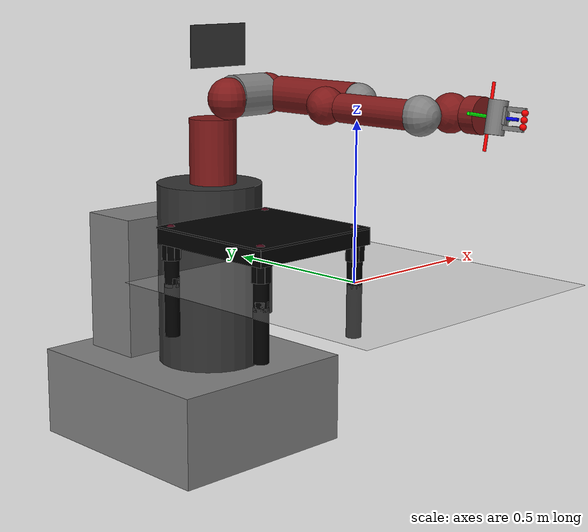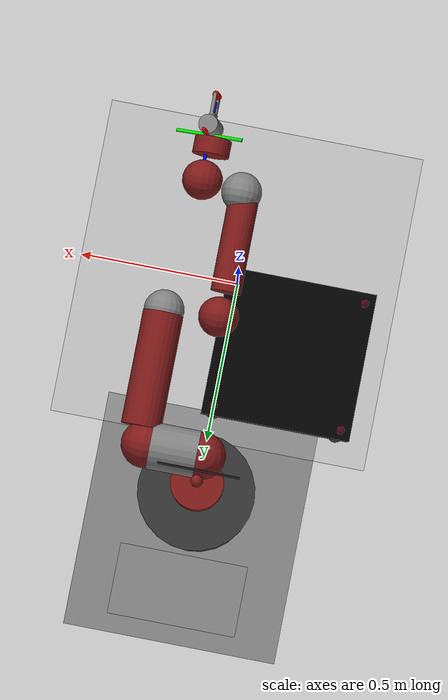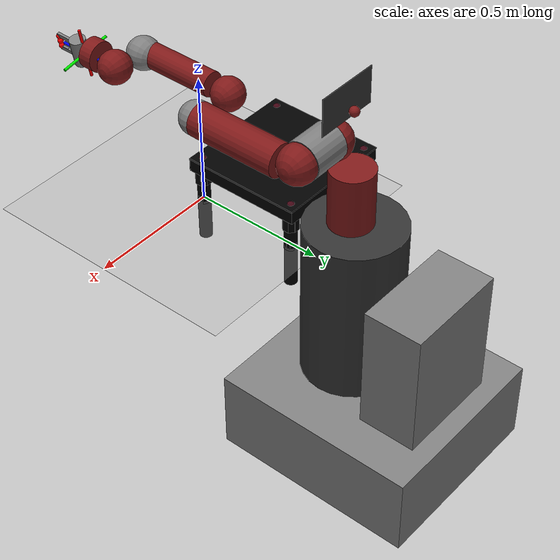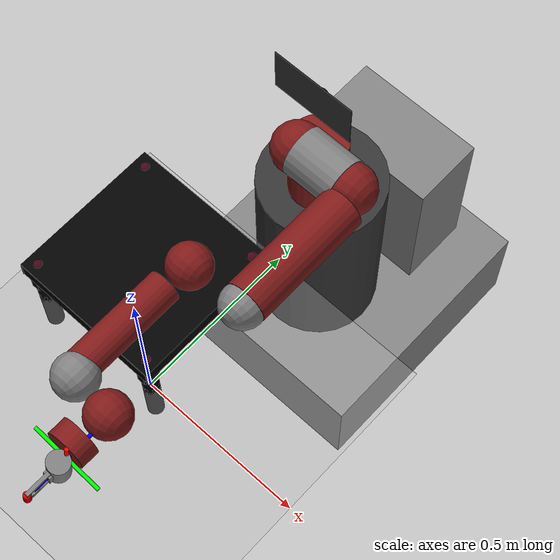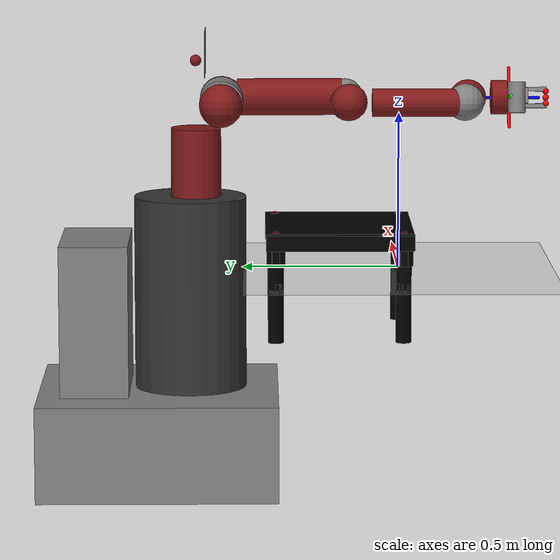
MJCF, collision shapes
<mujoco model="base">
  <compiler angle="radian" meshdir="meshes/" />
  <option cone="elliptic" impratio="20" />
  <size nconmax="5000" njmax="5000" />
  <visual>
      <map znear="0.001" />
  </visual>

  <asset>
  <texture builtin="flat" height="256" rgb1="1 1 1." rgb2=".2 .3 .4" type="skybox" width="256" />
        <texture builtin="checker" height="512" name="texplane" rgb1=".2 .3 .4" rgb2=".1 0.15 0.2" type="2d" width="512" />
        <material name="floorplane" reflectance="0.5" texrepeat="1 1" texture="texplane" texuniform="true" />
    <mesh file="C:\Users\harsh\OneDrive - Georgia Institute of Technology\Documents\Georgia Tech\Spring 2025\CS 7648 IRL\Project\cs7648\env\models\assets\robots\sawyer\meshes/pedestal.stl" name="pedestal" />
        <mesh file="C:\Users\harsh\OneDrive - Georgia Institute of Technology\Documents\Georgia Tech\Spring 2025\CS 7648 IRL\Project\cs7648\env\models\assets\robots\sawyer\meshes/base.stl" name="base" />
        <mesh file="C:\Users\harsh\OneDrive - Georgia Institute of Technology\Documents\Georgia Tech\Spring 2025\CS 7648 IRL\Project\cs7648\env\models\assets\robots\sawyer\meshes/l0.stl" name="l0" />
        <mesh file="C:\Users\harsh\OneDrive - Georgia Institute of Technology\Documents\Georgia Tech\Spring 2025\CS 7648 IRL\Project\cs7648\env\models\assets\robots\sawyer\meshes/head.stl" name="head" />
        <mesh file="C:\Users\harsh\OneDrive - Georgia Institute of Technology\Documents\Georgia Tech\Spring 2025\CS 7648 IRL\Project\cs7648\env\models\assets\robots\sawyer\meshes/l1.stl" name="l1" />
        <mesh file="C:\Users\harsh\OneDrive - Georgia Institute of Technology\Documents\Georgia Tech\Spring 2025\CS 7648 IRL\Project\cs7648\env\models\assets\robots\sawyer\meshes/l2.stl" name="l2" />
        <mesh file="C:\Users\harsh\OneDrive - Georgia Institute of Technology\Documents\Georgia Tech\Spring 2025\CS 7648 IRL\Project\cs7648\env\models\assets\robots\sawyer\meshes/l3.stl" name="l3" />
        <mesh file="C:\Users\harsh\OneDrive - Georgia Institute of Technology\Documents\Georgia Tech\Spring 2025\CS 7648 IRL\Project\cs7648\env\models\assets\robots\sawyer\meshes/l4.stl" name="l4" />
        <mesh file="C:\Users\harsh\OneDrive - Georgia Institute of Technology\Documents\Georgia Tech\Spring 2025\CS 7648 IRL\Project\cs7648\env\models\assets\robots\sawyer\meshes/l5.stl" name="l5" />
        <mesh file="C:\Users\harsh\OneDrive - Georgia Institute of Technology\Documents\Georgia Tech\Spring 2025\CS 7648 IRL\Project\cs7648\env\models\assets\robots\sawyer\meshes/l6.stl" name="l6" />
    <mesh file="C:\Users\harsh\OneDrive - Georgia Institute of Technology\Documents\Georgia Tech\Spring 2025\CS 7648 IRL\Project\cs7648\env\models\assets\grippers\meshes/two_finger_gripper/electric_gripper_base.STL" name="electric_gripper_base" />
        <mesh file="C:\Users\harsh\OneDrive - Georgia Institute of Technology\Documents\Georgia Tech\Spring 2025\CS 7648 IRL\Project\cs7648\env\models\assets\grippers\meshes/two_finger_gripper/standard_narrow.STL" name="standard_narrow" />
        <mesh file="C:\Users\harsh\OneDrive - Georgia Institute of Technology\Documents\Georgia Tech\Spring 2025\CS 7648 IRL\Project\cs7648\env\models\assets\grippers\meshes/two_finger_gripper/half_round_tip.STL" name="half_round_tip" />
    <mesh file="C:\Users\harsh\OneDrive - Georgia Institute of Technology\Documents\Georgia Tech\Spring 2025\CS 7648 IRL\Project\cs7648\env\models\assets\objects\toy_table/0.stl" name="part0" scale="0.042 0.042 0.042" />
    <mesh file="C:\Users\harsh\OneDrive - Georgia Institute of Technology\Documents\Georgia Tech\Spring 2025\CS 7648 IRL\Project\cs7648\env\models\assets\objects\toy_table/4.stl" name="part4" scale="0.042 0.042 0.042" />
    <mesh file="C:\Users\harsh\OneDrive - Georgia Institute of Technology\Documents\Georgia Tech\Spring 2025\CS 7648 IRL\Project\cs7648\env\models\assets\objects\toy_table/3.stl" name="part3" scale="0.042 0.042 0.042" />
    <mesh file="C:\Users\harsh\OneDrive - Georgia Institute of Technology\Documents\Georgia Tech\Spring 2025\CS 7648 IRL\Project\cs7648\env\models\assets\objects\toy_table/2.stl" name="part2" scale="0.042 0.042 0.042" />
    <mesh file="C:\Users\harsh\OneDrive - Georgia Institute of Technology\Documents\Georgia Tech\Spring 2025\CS 7648 IRL\Project\cs7648\env\models\assets\objects\toy_table/1.stl" name="part1" scale="0.042 0.042 0.042" />
  </asset>

  <actuator>
  <velocity ctrllimited="true" ctrlrange="-1.74 1.74" joint="right_j0" kv="8.0" name="vel_right_j0" />
        <velocity ctrllimited="true" ctrlrange="-1.328 1.328" joint="right_j1" kv="7.0" name="vel_right_j1" />
        <velocity ctrllimited="true" ctrlrange="-1.957 1.957" joint="right_j2" kv="6.0" name="vel_right_j2" />
        <velocity ctrllimited="true" ctrlrange="-1.957 1.957" joint="right_j3" kv="4.0" name="vel_right_j3" />
        <velocity ctrllimited="true" ctrlrange="-3.485 3.485" joint="right_j4" kv="2.0" name="vel_right_j4" />
        <velocity ctrllimited="true" ctrlrange="-3.485 3.485" joint="right_j5" kv="0.5" name="vel_right_j5" />
        <velocity ctrllimited="true" ctrlrange="-4.545 4.545" joint="right_j6" kv="0.1" name="vel_right_j6" />
    <position ctrllimited="true" ctrlrange="-0.020833 0.0115" forcelimited="true" forcerange="-20 20" joint="r_gripper_r_finger_joint" kp="10000" name="gripper_r_gripper_r_finger_joint" />
        <position ctrllimited="true" ctrlrange="-0.0115 0.020833" forcelimited="true" forcerange="-20 20" joint="r_gripper_l_finger_joint" kp="10000" name="gripper_r_gripper_l_finger_joint" />
    </actuator>

  <worldbody>
  <geom condim="3" friction="2.0 0.005 0.0001" name="FLOOR" pos="0 0 0" rgba="0.7 0.7 0.7 1" size="0.5 0.5 0.0625" type="plane" />

        <light castshadow="true" diffuse=".8 .8 .8" dir=".5 -.3 -.8" directional="true" pos="0 0 2.0" specular="0.3 0.3 0.3" />

        <camera fovy="60" mode="fixed" name="frontview" pos="0 -1.2 0.9" quat="0.86 0.51 0. 0." />
        <camera mode="fixed" name="sideview" pos="-2.5 0. 0.5" quat="0.5468 0.4482 -0.4482 -0.5468" />
    <body name="base" pos="0.0 0.65 0.21300000000000008" quat="1 0 0 -1">
            <inertial diaginertia="0 0 0" mass="0" pos="0 0 0" />
            <body name="controller_box" pos="0 0 0">
                <inertial diaginertia="1.71363 1.27988 0.809981" mass="46.64" pos="-0.325 0 -0.38" />
                <geom name="controller_box_visual" pos="-0.325 0 -0.38" size="0.11 0.2 0.265" type="box" />
            </body>
            <body name="pedestal_feet" pos="0 0 0">
                <inertial diaginertia="8.16095 9.59375 15.0785" mass="167.09" pos="-0.1225 0 -0.758" />
                <geom name="pedestal_feet_visual" pos="-0.1225 0 -0.758" size="0.385 0.35 0.155" type="box" />
            </body>
            <body name="torso" pos="0 0 0">
                <inertial diaginertia="1e-08 1e-08 1e-08" mass="0.0001" pos="0 0 0" />
                <geom conaffinity="0" contype="0" group="1" name="torso_visual" rgba="0.2 0.2 0.2 1" size="0.05 0.05 0.05" type="box" />
            </body>
            <body name="pedestal" pos="0 0 0">
                <inertial diaginertia="6.0869 5.81635 4.20915" mass="60.864" pos="0 0 0" quat="0.659267 -0.259505 -0.260945 0.655692" />
                <geom conaffinity="0" contype="0" group="1" mesh="pedestal" name="pedestal_visual" pos="0.26 0.345 -0.91488" quat="0.5 0.5 -0.5 -0.5" rgba="0.2 0.2 0.2 1" type="mesh" />
                <geom name="pedestal_collision" pos="-0.02 0 -0.29" rgba="0.2 0.2 0.2 1" size="0.18 0.31" type="cylinder" />
            </body>
            <body name="right_arm_base_link" pos="0 0 0">
                <inertial diaginertia="0.00740351 0.00681776 0.00672942" mass="2.0687" pos="-0.0006241 -2.8025e-05 0.065404" quat="-0.209285 0.674441 0.227335 0.670558" />
                <geom conaffinity="0" contype="0" group="1" mesh="base" name="right_arm_base_link_visual" rgba="0.5 0.1 0.1 1" type="mesh" />
                <geom name="right_arm_base_link_collision" pos="0 0 0.12" rgba="0.5 0.1 0.1 1" size="0.08 0.12" type="cylinder" />
                <body name="right_l0" pos="0 0 0.08">
                    <inertial diaginertia="0.0651588 0.0510944 0.0186218" mass="5.3213" pos="0.024366 0.010969 0.14363" quat="0.894823 0.00899958 -0.170275 0.412573" />
                    <joint axis="0 0 1" limited="true" name="right_j0" pos="0 0 0" range="-3.0503 3.0503" />
                    <geom conaffinity="0" contype="0" group="1" mesh="l0" name="right_l0_visual" rgba="0.5 0.1 0.1 1" type="mesh" />
                    <geom name="right_l0_collision" pos="0.08 0 0.23" rgba="0.5 0.1 0.1 1" size="0.07" />
                    <body name="head" pos="0 0 0.2965">
                        <inertial diaginertia="0.0118334 0.00827089 0.00496574" mass="1.5795" pos="0.0053207 -2.6549e-05 0.1021" quat="0.999993 7.08405e-05 -0.00359857 -0.000626247" />

                            <geom conaffinity="0" contype="0" group="1" mesh="head" name="head_visual" rgba="0.5 0.1 0.1 1" type="mesh" />
                            <geom name="head_collision" pos="0 0 0.08" rgba="0.5 0.1 0.1 1" size="0.018" />
                            <body name="screen" pos="0.03 0 0.105" quat="0.5 0.5 0.5 0.5">
                                <inertial diaginertia="1e-08 1e-08 1e-08" mass="0.0001" pos="0 0 0" />
                                <geom conaffinity="0" contype="0" group="1" name="screen_visual" rgba="0.2 0.2 0.2 1" size="0.12 0.07 0.001" type="box" />
                                <geom name="screen_collision" rgba="0.2 0.2 0.2 1" size="0.001" />
                            </body>
                            <body name="head_camera" pos="0.0228027 0 0.216572" quat="0.342813 -0.618449 0.618449 -0.342813">
                                <inertial diaginertia="0 0 0" mass="0" pos="0.0228027 0 0.216572" quat="0.342813 -0.618449 0.618449 -0.342813" />
                            </body>
                        </body>
                        <body name="right_torso_itb" pos="-0.055 0 0.22" quat="0.707107 0 -0.707107 0">
                            <inertial diaginertia="1e-08 1e-08 1e-08" mass="0.0001" pos="0 0 0" />
                        </body>
                        <body name="right_l1" pos="0.081 0.05 0.237" quat="0.5 -0.5 0.5 0.5">
                            <inertial diaginertia="0.0224339 0.0221624 0.0097097" mass="4.505" pos="-0.0030849 -0.026811 0.092521" quat="0.424888 0.891987 0.132364 -0.0794296" />
                            <joint axis="0 0 1" limited="true" name="right_j1" pos="0 0 0" range="-3.8095 2.2736" />
                            <geom conaffinity="0" contype="0" group="1" mesh="l1" name="right_l1_visual" rgba="0.5 0.1 0.1 1" type="mesh" />
                            <geom name="right_l1_collision" pos="0 0 0.1225" rgba="0.5 0.1 0.1 1" size="0.07" />
                            <body name="right_l2" pos="0 -0.14 0.1425" quat="0.707107 0.707107 0 0">
                                <inertial diaginertia="0.0257928 0.025506 0.00292515" mass="1.745" pos="-0.00016044 -0.014967 0.13582" quat="0.707831 -0.0524761 0.0516007 0.702537" />
                                <joint axis="0 0 1" limited="true" name="right_j2" pos="0 0 0" range="-3.0426 3.0426" />
                                <geom conaffinity="0" contype="0" group="1" mesh="l2" name="right_l2_visual" rgba="0.5 0.1 0.1 1" type="mesh" />
                                <geom name="right_l2_collision" pos="0 0 0.08" rgba="0.5 0.1 0.1 1" size="0.06 0.17" type="cylinder" />
                                <body name="right_l3" pos="0 -0.042 0.26" quat="0.707107 -0.707107 0 0">
                                    <inertial diaginertia="0.0102404 0.0096997 0.00369622" mass="2.5097" pos="-0.0048135 -0.0281 -0.084154" quat="0.902999 0.385391 -0.0880901 0.168247" />
                                    <joint axis="0 0 1" limited="true" name="right_j3" pos="0 0 0" range="-3.0439 3.0439" />
                                    <geom conaffinity="0" contype="0" group="1" mesh="l3" name="right_l3_visual" rgba="0.5 0.1 0.1 1" type="mesh" />
                                    <geom name="right_l3_collision" pos="0 -0.01 -0.12" rgba="0.5 0.1 0.1 1" size="0.06" />
                                    <body name="right_l4" pos="0 -0.125 -0.1265" quat="0.707107 0.707107 0 0">
                                        <inertial diaginertia="0.0136549 0.0135493 0.00127353" mass="1.1136" pos="-0.0018844 0.0069001 0.1341" quat="0.803612 0.031257 -0.0298334 0.593582" />
                                        <joint axis="0 0 1" limited="true" name="right_j4" pos="0 0 0" range="-2.9761 2.9761" />
                                        <geom conaffinity="0" contype="0" group="1" mesh="l4" name="right_l4_visual" rgba="0.5 0.1 0.1 1" type="mesh" />
                                        <geom name="right_l4_collision" pos="0 0 0.11" rgba="0.5 0.1 0.1 1" size="0.045 0.15" type="cylinder" />
                                        <body name="right_arm_itb" pos="-0.055 0 0.075" quat="0.707107 0 -0.707107 0">
                                            <inertial diaginertia="1e-08 1e-08 1e-08" mass="0.0001" pos="0 0 0" />
                                        </body>
                                        <body name="right_l5" pos="0 0.031 0.275" quat="0.707107 -0.707107 0 0">
                                            <inertial diaginertia="0.00474131 0.00422857 0.00190672" mass="1.5625" pos="0.0061133 -0.023697 0.076416" quat="0.404076 0.9135 0.0473125 0.00158335" />
                                            <joint axis="0 0 1" damping="0.2" limited="true" name="right_j5" pos="0 0 0" range="-2.9761 2.9761" />
                                            <geom conaffinity="0" contype="0" group="1" mesh="l5" name="right_l5_visual" rgba="0.5 0.1 0.1 1" type="mesh" />
                                            <geom name="right_l5_collision" pos="0 0 0.1" rgba="0.5 0.1 0.1 1" size="0.06" />
                                            <body name="right_hand_camera" pos="0.039552 -0.033 0.0695" quat="0.707107 0 0.707107 0">
                                                <inertial diaginertia="0 0 0" mass="0" pos="0.039552 -0.033 0.0695" quat="0.707107 0 0.707107 0" />
                                            </body>
                                            <body name="right_wrist" pos="0 0 0.10541" quat="0.707107 0.707107 0 0">
                                                <inertial diaginertia="0 0 0" mass="0" pos="0 0 0.10541" quat="0.707107 0.707107 0 0" />
                                            </body>
                                            <body name="right_l6" pos="0 -0.11 0.1053" quat="0.0616248 0.06163 -0.704416 0.704416">
                                                <camera euler="-2.7 0 0" name="wrist_cam" pos="0 0.1 0" />
                                                <inertial diaginertia="0.000360258 0.000311068 0.000214974" mass="0.3292" pos="-8.0726e-06 0.0085838 -0.0049566" quat="0.479044 0.515636 -0.513069 0.491322" />
                                                <joint axis="0 0 1" damping="0.1" limited="true" name="right_j6" pos="0 0 0" range="-4.7124 4.7124" />
                                                <geom conaffinity="0" contype="0" group="1" mesh="l6" name="right_l6_visual" rgba="0.5 0.1 0.1 1" type="mesh" />
                                                <geom name="right_l6_collision" pos="0 0.015 -0.01" rgba="0.5 0.1 0.1 1" size="0.055 0.025" type="cylinder" />
                                                <body name="right_hand" pos="0 0 0.0245" quat="0.707105 0 0 0.707108">

                                                    <site group="1" name="ee" pos="0 0 0" rgba="0 0 1 1" size="0.01 0.01 0.01" type="sphere" />
                                                    <site group="1" name="ee_x" pos="0 0 0" quat="0.707105 0.707108 0 0 " rgba="1 0 0 1" size="0.005 .1" type="cylinder" />
                                                    <site group="1" name="ee_z" pos="0 0 0" quat="0.707105 0 0 0.707108" rgba="0 0 1 1" size="0.005 .1" type="cylinder" />
                                                    <site group="1" name="ee_y" pos="0 0 0" quat="0.707105 0 0.707108 0 " rgba="0 1 0 1" size="0.005 .1" type="cylinder" />

                                                <geom size="1e-08 5e-09" type="cylinder" />
        <body name="right_gripper_base" pos="0 0 0.025">
            <site group="1" name="ft_frame" pos="0 0 0" rgba="1 0 0 1" size="0.01 0.01 0.01" type="sphere" />
            <inertial diaginertia="3e-08 2e-08 2e-08" mass="0.3" pos="0 0 0" quat="-0.5 0.5 0.5 0.5" />
            <geom conaffinity="0" contype="0" group="1" mesh="electric_gripper_base" name="right_gripper_base_visual" quat="0 0 0.707107 0.707107" type="mesh" />
            <geom name="right_gripper_base_collision" quat="0 0 0.707107 0.707107" size="0.029 0.05" type="cylinder" />
            <body name="right_gripper" pos="0 0 0.095">
                <inertial diaginertia="0 0 0" mass="0.0001" pos="0 0 0" />

                <site group="1" name="grip_site" pos="0 0 -0.03" rgba="0 0 0 0" size="0.01 0.01 0.01" type="sphere" />

                <site group="1" name="griptip_site" pos="0 0 0" rgba="1 0 0 1" size="0.01 0.01 0.01" type="sphere" />
                <site group="1" name="lgriptip_site" pos="0 0.02 0" rgba="1 0 0 1" size="0.01 0.01 0.01" type="sphere" />
                <site group="1" name="rgriptip_site" pos="0 -0.02 0" rgba="1 0 0 1" size="0.01 0.01 0.01" type="sphere" />

                <site group="1" name="grip_site_cylinder" pos="0 0 0" rgba="0 0 0 0" size="0.005 10" type="cylinder" />

                <camera fovy="75" mode="fixed" name="eye_in_hand" pos="0 0 0" quat="0 -1 1 0" />
            </body>

            <body name="r_gripper_l_finger" pos="0 0.01 0.02">
                <inertial diaginertia="0.01 0.01 0.01" mass="0.02" pos="0 0 0" quat="0 0 0 -1" />
                <joint axis="0 1 0" damping="100" limited="true" name="r_gripper_l_finger_joint" pos="0 0 0" range="-0.0115 0.020833" type="slide" />
                <geom conaffinity="0" contype="0" group="1" mesh="standard_narrow" name="r_gripper_l_finger" quat="0 0 0 -1" type="mesh" />
                <geom conaffinity="1" contype="0" friction="0 0 0" name="l_finger_g0" pos="0 0.01725 0.04" quat="0 0 0 -1" size="0.005 0.00675 0.0375" type="box" />
                <geom conaffinity="1" contype="0" friction="0 0 0" name="l_finger_g1" pos="-0.005 -0.003 0.0083" quat="0 0 0 -1" size="0.005 0.025 0.0085" type="box" />

                <body name="r_gripper_l_finger_tip" pos="0 0.01725 0.075">
                    <inertial diaginertia="0.01 0.01 0.01" mass="0.01" pos="0 0 0" quat="0 0 0 1" />
                    <geom conaffinity="0" contype="0" group="1" mesh="half_round_tip" name="r_gripper_l_finger_tip_visual" quat="0 0 0 1" type="mesh" />

                <geom conaffinity="1" contype="0" friction="2 10 0.5" name="l_fingertip_g0" pos="0 -0.0045 -0.015" quat="0 0 0 1" size="0.004 0.004 0.0185" type="box" />

                </body>
            </body>
            <body name="r_gripper_r_finger" pos="0 -0.01 0.02">
                <inertial diaginertia="0.01 0.01 0.01" mass="0.02" pos="0 0 0" />
                <joint axis="0 1 0" damping="100" limited="true" name="r_gripper_r_finger_joint" pos="0 0 0" range="-0.020833 0.0115" type="slide" />
                <geom conaffinity="0" contype="0" group="1" mesh="standard_narrow" name="r_gripper_r_finger" type="mesh" />
                <geom conaffinity="1" contype="0" friction="0 0 0" name="r_finger_g0" pos="0 -0.01725 0.04" size="0.005 0.00675 0.0375" type="box" />
                <geom conaffinity="1" contype="0" friction="0 0 0" name="r_finger_g1" pos="0.005 0.003 0.0083" size="0.005 0.025 0.0085" type="box" />
                <body name="r_gripper_r_finger_tip" pos="0 -0.01725 0.075">
                    <inertial diaginertia="0.01 0.01 0.01" mass="0.01" pos="0 0 0" />
                    <geom conaffinity="0" contype="0" group="1" mesh="half_round_tip" name="r_gripper_r_finger_tip_visual" type="mesh" />
                    <geom conaffinity="1" contype="0" friction="2 10 0.5" name="r_fingertip_g0" pos="0 0.0045 -0.015" size="0.004 0.004 0.0185" type="box" />
                </body>
            </body>
        </body>
    </body>
                                            </body>
                                        </body>
                                        <body name="right_l4_2" pos="0 0 0">
                                            <inertial diaginertia="1e-08 1e-08 1e-08" mass="1e-08" pos="1e-08 1e-08 1e-08" quat="0.820473 0.339851 -0.17592 0.424708" />
                                            <geom name="right_l4_2_collision" pos="0 0.01 0.26" size="0.06" />
                                        </body>
                                    </body>
                                </body>
                                <body name="right_l2_2" pos="0 0 0">
                                    <inertial diaginertia="1e-08 1e-08 1e-08" mass="1e-08" pos="1e-08 1e-08 1e-08" quat="0.820473 0.339851 -0.17592 0.424708" />
                                    <geom name="right_l2_2_collision" pos="0 0 0.26" size="0.06" />
                                </body>
                            </body>
                            <body name="right_l1_2" pos="0 0 0">
                                <inertial diaginertia="1e-08 1e-08 1e-08" mass="1e-08" pos="1e-08 1e-08 1e-08" quat="0.820473 0.339851 -0.17592 0.424708" />
                                <geom name="right_l1_2_collision" pos="0 0 0.035" size="0.07 0.07" type="cylinder" />
                            </body>
                        </body>
                    </body>
                </body>
            </body>
        <body name="0_part0" pos="0.0 0.0 0.0" quat="1 0 0 0">
      <geom conaffinity="0" contype="0" density="0" friction="1 10 0.5" mesh="part0" name="0_part0-0" pos="0.0 0.0 0.0" rgba="0.82 0.71 0.55 1" type="mesh" />
      <site group="1" name="0_part0_ltgt_site0" pos="0.02 0 -0.02" rgba="0 0 0 0" size="0.01 0.01 0.01" type="sphere" />
      <site group="1" name="0_part0_rtgt_site0" pos="-0.02 0 -0.02" rgba="0 0 0 0" size="0.01 0.01 0.01" type="sphere" />
      <site name="0_part0_horizontal_radius_site" pos="0.0 0.0 0.0" quat="1 0 0 0" rgba="0 0 0 0" size="0.016800144133768378" />
      <site name="0_part0_top_site" pos="0.0 0.0 0.16785563708678283" quat="1 0 0 0" rgba="0 0 0 0" size="0.016800144133768378" />
      <site name="0_part0_bottom_site" pos="0.0 0.0 -0.16785563708678283" quat="1 0 0 0" rgba="0 0 0 0" size="0.016800144133768378" />
      <site name="0_part0_corner_site8" pos="-0.02663028646967926 0.02663028646967926 0.16785563708678283" quat="1 0 0 0" rgba="0 0 0 0" size="0.016800144133768378" />
      <site name="0_part0_corner_site7" pos="0.02663028646967926 0.02663028646967926 0.16785563708678283" quat="1 0 0 0" rgba="0 0 0 0" size="0.016800144133768378" />
      <site name="0_part0_corner_site6" pos="0.02663028646967926 -0.02663028646967926 0.16785563708678283" quat="1 0 0 0" rgba="0 0 0 0" size="0.016800144133768378" />
      <site name="0_part0_corner_site5" pos="-0.02663028646967926 -0.02663028646967926 0.16785563708678283" quat="1 0 0 0" rgba="0 0 0 0" size="0.016800144133768378" />
      <site name="0_part0_corner_site4" pos="-0.02663028646967926 0.02663028646967926 -0.16785563708678283" quat="1 0 0 0" rgba="0 0 0 0" size="0.016800144133768378" />
      <site name="0_part0_corner_site3" pos="0.02663028646967926 0.02663028646967926 -0.16785563708678283" quat="1 0 0 0" rgba="0 0 0 0" size="0.016800144133768378" />
      <site name="0_part0_corner_site2" pos="0.02663028646967926 -0.02663028646967926 -0.16785563708678283" quat="1 0 0 0" rgba="0 0 0 0" size="0.016800144133768378" />
      <site name="0_part0_corner_site1" pos="-0.02663028646967926 -0.02663028646967926 -0.16785563708678283" quat="1 0 0 0" rgba="0 0 0 0" size="0.016800144133768378" />
      <site name="leg-top,,conn_site3" pos="-0.0004200036033442094 0.0012600108100326282 0.16473519883261845" quat="0 0 1 0" rgba="0.9019 0.0980 0.2941 0.3" size="0.016800144133768378" />
      <geom density="50" friction="1 10 0.5" name="noviz_collision_0_part0_0" pos="0.0 0.0 0.0771358" quat="1 0 0 0" rgba="0 0 0 0" size="0.02382135 0.090748" solref="0.001 1" type="cylinder" />
      <geom density="50" friction="1 10 0.5" name="noviz_collision_0_part0_1" pos="0.0 0.0 -0.0771358" quat="1 0 0 0" rgba="0 0 0 0" size="0.02382135 0.093" solref="0.001 1" type="cylinder" />
    <site name="0_part0" pos="0 0 0" rgba="1 0 0 0" size="0.002 0.002 0.002" type="sphere" /><joint damping="0.0001" name="0_part0" type="free" /></body>
    <body name="4_part4" pos="-0.19870370474214546 0.19870368374196531 0.13643401251069334" quat="1 0 0 0">
      <geom conaffinity="0" contype="0" density="0" friction="1 10 0.5" mesh="part4" name="4_part4-0" pos="0.0 0.0 0.0" rgba="0.82 0.71 0.55 1" type="mesh" />
      <site name="4_part4_horizontal_radius_site" pos="0.0 0.0 0.0" quat="1 0 0 0" rgba="0 0 0 0" size="0.016800144133768378" />
      <site name="4_part4_top_site" pos="0.0 0.0 0.03774280480750086" quat="1 0 0 0" rgba="0 0 0 0" size="0.016800144133768378" />
      <site name="4_part4_bottom_site" pos="0.0 0.0 -0.03774280480750086" quat="1 0 0 0" rgba="0 0 0 0" size="0.016800144133768378" />
      <site name="4_part4_right_site" pos="0 0.23137183701242006 0.0" quat="1 0 0 0" rgba="0 0 0 0" size="0.016800144133768378" />
      <site name="4_part4_left_site" pos="0 -0.23137183701242006 0.0" quat="1 0 0 0" rgba="0 0 0 0" size="0.016800144133768378" />
      <site name="4_part4_corner_site8" pos="-0.23137183701242006 0.23137185801260024 0.03774280480750086" quat="1 0 0 0" rgba="0 0 0 0" size="0.016800144133768378" />
      <site name="4_part4_corner_site7" pos="0.23137183701242006 0.23137185801260024 0.03774280480750086" quat="1 0 0 0" rgba="0 0 0 0" size="0.016800144133768378" />
      <site name="4_part4_corner_site6" pos="0.23137183701242006 -0.23137185801260024 0.03774280480750086" quat="1 0 0 0" rgba="0 0 0 0" size="0.016800144133768378" />
      <site name="4_part4_corner_site5" pos="-0.23137183701242006 -0.23137185801260024 0.03774280480750086" quat="1 0 0 0" rgba="0 0 0 0" size="0.016800144133768378" />
      <site name="4_part4_corner_site4" pos="-0.23137183701242006 0.23137185801260024 -0.03774280480750086" quat="1 0 0 0" rgba="0 0 0 0" size="0.016800144133768378" />
      <site name="4_part4_corner_site3" pos="0.23137183701242006 0.23137185801260024 -0.03774280480750086" quat="1 0 0 0" rgba="0 0 0 0" size="0.016800144133768378" />
      <site name="4_part4_corner_site2" pos="0.23137183701242006 -0.23137185801260024 -0.03774280480750086" quat="1 0 0 0" rgba="0 0 0 0" size="0.016800144133768378" />
      <site name="4_part4_corner_site1" pos="-0.23137183701242006 -0.23137185801260024 -0.03774280480750086" quat="1 0 0 0" rgba="0 0 0 0" size="0.016800144133768378" />
      <site name="top-leg,,conn_site4" pos="0.19807369933712918 0.19807369933712918 0.003301228322285486" quat="0 0 1 0" rgba="0.9019 0.0980 0.2941 0.3" size="0.01679342264788419" />
      <site name="top-leg,,conn_site3" pos="0.19807369933712918 -0.19903970762482084 0.003301228322285486" quat="0 0 1 0" rgba="0.9019 0.0980 0.2941 0.3" size="0.016800144133768374" />
      <site name="top-leg,,conn_site2" pos="-0.19945971122816508 -0.1982837011388013 0.003301228322285486" quat="0 0 1 0" rgba="0.9019 0.0980 0.2941 0.3" size="0.016800144133768374" />
      <site name="top-leg,,conn_site1" pos="-0.19903970762482084 0.19903970762482084 0.003301228322285486" quat="0 0 1 0" rgba="0.9019 0.0980 0.2941 0.3" size="0.016800144133768374" />
      <geom density="50" friction="1 10 0.5" name="noviz_collision_4_part4_0" pos="-0.19797810549999997 0.1706402705 -0.016" quat="1 0 0 0" rgba="0 0 0 0" size="0.0113435 0.0001701525 0.0485" solref="0.001 1" type="box" />
      <geom density="50" friction="1 10 0.5" name="noviz_collision_4_part4_1" pos="-0.19797810549999997 0.2267679085 -0.016" quat="1 0 0 0" rgba="0 0 0 0" size="0.0113435 0.0001701525 0.0485" solref="0.001 1" type="box" />
      <geom density="50" friction="1 10 0.5" name="noviz_collision_4_part4_2" pos="-0.21828297049999998 0.17858072049999998 -0.016" quat="0.9238796 0 0 -0.3826834" rgba="0 0 0 0" size="0.0113435 0.0001701525 0.0485" solref="0.001 1" type="box" />
      <geom density="50" friction="1 10 0.5" name="noviz_collision_4_part4_3" pos="-0.17056086599999998 0.1987721505 -0.016" quat="0.7071067 0 0 -0.7071068" rgba="0 0 0 0" size="0.0113435 0.0001701525 0.0485" solref="0.001 1" type="box" />
      <geom density="50" friction="1 10 0.5" name="noviz_collision_4_part4_4" pos="-0.226847313 0.1987721505 -0.016" quat="0.7071067 0 0 -0.7071068" rgba="0 0 0 0" size="0.0113435 0.0001701525 0.0485" solref="0.001 1" type="box" />
      <geom density="50" friction="1 10 0.5" name="noviz_collision_4_part4_5" pos="-0.17858072049999998 0.21828297049999998 -0.016" quat="0.9238796 0 0 -0.3826834" rgba="0 0 0 0" size="0.0113435 0.0001701525 0.0485" solref="0.001 1" type="box" />
      <geom density="50" friction="1 10 0.5" name="noviz_collision_4_part4_6" pos="-0.218294314 0.21892955 -0.016" quat="0.9238796 0 0 0.3826834" rgba="0 0 0 0" size="0.0113435 0.0001701525 0.0485" solref="0.001 1" type="box" />
      <geom density="50" friction="1 10 0.5" name="noviz_collision_4_part4_7" pos="-0.17801354549999998 0.1786941555 -0.016" quat="0.9238796 0 0 0.3826834" rgba="0 0 0 0" size="0.0113435 0.0001701525 0.0485" solref="0.001 1" type="box" />
      <geom density="50" friction="1 10 0.5" name="noviz_collision_4_part4_8" pos="0.1993846995 0.1706402705 -0.016" quat="1 0 0 0" rgba="0 0 0 0" size="0.0113435 0.0001701525 0.0485" solref="0.001 1" type="box" />
      <geom density="50" friction="1 10 0.5" name="noviz_collision_4_part4_9" pos="0.1993846995 0.2267679085 -0.016" quat="1 0 0 0" rgba="0 0 0 0" size="0.0113435 0.0001701525 0.0485" solref="0.001 1" type="box" />
      <geom density="50" friction="1 10 0.5" name="noviz_collision_4_part4_10" pos="0.179113865 0.17858072049999998 -0.016" quat="0.9238796 0 0 -0.3826834" rgba="0 0 0 0" size="0.0113435 0.0001701525 0.0485" solref="0.001 1" type="box" />
      <geom density="50" friction="1 10 0.5" name="noviz_collision_4_part4_11" pos="0.226801939 0.1987721505 -0.016" quat="0.7071067 0 0 -0.7071068" rgba="0 0 0 0" size="0.0113435 0.0001701525 0.0485" solref="0.001 1" type="box" />
      <geom density="50" friction="1 10 0.5" name="noviz_collision_4_part4_12" pos="0.17049280499999997 0.1987721505 -0.016" quat="0.7071067 0 0 -0.7071068" rgba="0 0 0 0" size="0.0113435 0.0001701525 0.0485" solref="0.001 1" type="box" />
      <geom density="50" friction="1 10 0.5" name="noviz_collision_4_part4_13" pos="0.2187820845 0.21828297049999998 -0.016" quat="0.9238796 0 0 -0.3826834" rgba="0 0 0 0" size="0.0113435 0.0001701525 0.0485" solref="0.001 1" type="box" />
      <geom density="50" friction="1 10 0.5" name="noviz_collision_4_part4_14" pos="0.179068491 0.21892955 -0.016" quat="0.9238796 0 0 0.3826834" rgba="0 0 0 0" size="0.0113435 0.0001701525 0.0485" solref="0.001 1" type="box" />
      <geom density="50" friction="1 10 0.5" name="noviz_collision_4_part4_15" pos="0.21938328999999998 0.1786941555 -0.016" quat="0.9238796 0 0 0.3826834" rgba="0 0 0 0" size="0.0113435 0.0001701525 0.0485" solref="0.001 1" type="box" />
      <geom density="50" friction="1 10 0.5" name="noviz_collision_4_part4_16" pos="0.1993846995 -0.226756565 -0.016" quat="1 0 0 0" rgba="0 0 0 0" size="0.0113435 0.0001701525 0.0485" solref="0.001 1" type="box" />
      <geom density="50" friction="1 10 0.5" name="noviz_collision_4_part4_17" pos="0.1993846995 -0.17060624 -0.016" quat="1 0 0 0" rgba="0 0 0 0" size="0.0113435 0.0001701525 0.0485" solref="0.001 1" type="box" />

      <geom density="50" friction="1 10 0.5" name="noviz_collision_4_part4_18" pos="0.2268359695 -0.1987040895 -0.016" quat="0.7071067 0 0 -0.7071068" rgba="0 0 0 0" size="0.0113435 0.0001701525 0.0485" solref="0.001 1" type="box" />
      <geom density="50" friction="1 10 0.5" name="noviz_collision_4_part4_19" pos="0.17049280499999997 -0.1987040895 -0.016" quat="0.7071067 0 0 -0.7071068" rgba="0 0 0 0" size="0.0113435 0.0001701525 0.0485" solref="0.001 1" type="box" />
      <geom density="50" friction="1 10 0.5" name="noviz_collision_4_part4_20" pos="0.21923582449999998 -0.21787460449999999 -0.016" quat="0.9238796 0 0 0.3826834" rgba="0 0 0 0" size="0.0113435 0.0001701525 0.0485" solref="0.001 1" type="box" />
      <geom density="50" friction="1 10 0.5" name="noviz_collision_4_part4_21" pos="0.218566558 -0.178750873 -0.016" quat="0.9238796 0 0 -0.3826834" rgba="0 0 0 0" size="0.0113435 0.0001701525 0.0485" solref="0.001 1" type="box" />
      <geom density="50" friction="1 10 0.5" name="noviz_collision_4_part4_22" pos="0.17876221650000002 -0.2185325275 -0.016" quat="0.9238796 0 0 -0.3826834" rgba="0 0 0 0" size="0.0113435 0.0001701525 0.0485" solref="0.001 1" type="box" />
      <geom density="50" friction="1 10 0.5" name="noviz_collision_4_part4_23" pos="0.179181926 -0.178478629 -0.016" quat="0.9238796 0 0 0.3826834" rgba="0 0 0 0" size="0.0113435 0.0001701525 0.0485" solref="0.001 1" type="box" />
      <geom density="50" friction="1 10 0.5" name="noviz_collision_4_part4_24" pos="-0.21840774899999998 -0.178728186 -0.016" quat="0.9238796 0 0 0.3826834" rgba="0 0 0 0" size="0.0113435 0.0001701525 0.0485" solref="0.001 1" type="box" />
      <geom density="50" friction="1 10 0.5" name="noviz_collision_4_part4_25" pos="-0.19797810549999997 -0.1707310185 -0.016" quat="1 0 0 0" rgba="0 0 0 0" size="0.0113435 0.0001701525 0.0485" solref="0.001 1" type="box" />
      <geom density="50" friction="1 10 0.5" name="noviz_collision_4_part4_26" pos="-0.19797810549999997 -0.2268359695 -0.016" quat="1 0 0 0" rgba="0 0 0 0" size="0.0113435 0.0001701525 0.0485" solref="0.001 1" type="box" />
      <geom density="50" friction="1 10 0.5" name="noviz_collision_4_part4_27" pos="-0.1706402705 -0.1992712645 -0.016" quat="0.7071067 0 0 -0.7071068" rgba="0 0 0 0" size="0.0113435 0.0001701525 0.0485" solref="0.001 1" type="box" />
      <geom density="50" friction="1 10 0.5" name="noviz_collision_4_part4_28" pos="-0.2268132825 -0.1992712645 -0.016" quat="0.7071067 0 0 -0.7071068" rgba="0 0 0 0" size="0.0113435 0.0001701525 0.0485" solref="0.001 1" type="box" />
      <geom density="50" friction="1 10 0.5" name="noviz_collision_4_part4_29" pos="-0.1787395295 -0.2183964055 -0.016" quat="0.9238796 0 0 0.3826834" rgba="0 0 0 0" size="0.0113435 0.0001701525 0.0485" solref="0.001 1" type="box" />
      <geom density="50" friction="1 10 0.5" name="noviz_collision_4_part4_30" pos="-0.218294314 -0.218906863 -0.016" quat="0.9238796 0 0 -0.3826834" rgba="0 0 0 0" size="0.0113435 0.0001701525 0.0485" solref="0.001 1" type="box" />
      <geom density="50" friction="1 10 0.5" name="noviz_collision_4_part4_31" pos="-0.1786034075 -0.1792159565 -0.016" quat="0.9238796 0 0 -0.3826834" rgba="0 0 0 0" size="0.0113435 0.0001701525 0.0485" solref="0.001 1" type="box" />
      <geom density="50" friction="1 10 0.5" name="noviz_collision_4_part4_32" pos="0.0 0.0 0.035981582" quat="1 0 0 0" rgba="0 0 0 0" size="0.2313733695 0.23013733695 0.002835875" solref="0.001 1" type="box" />
      <geom density="50" friction="1 10 0.5" name="noviz_collision_4_part4_33" pos="0.0015540595 -0.2297852795 0.011" quat="1 0 0 0" rgba="0 0 0 0" size="0.23 0.0001701525 0.026" solref="0.001 1" type="box" />
      <geom density="50" friction="1 10 0.5" name="noviz_collision_4_part4_34" pos="0.0015540595 0.229751249 0.011" quat="1 0 0 0" rgba="0 0 0 0" size="0.23 0.0001701525 0.026" solref="0.001 1" type="box" />
      <geom density="50" friction="1 10 0.5" name="noviz_collision_4_part4_35" pos="0.2298987145 -0.0021212345 0.011" quat="0.7071067 0 0 -0.7071068" rgba="0 0 0 0" size="0.23 0.0001701525 0.026" solref="0.001 1" type="box" />
      <geom density="50" friction="1 10 0.5" name="noviz_collision_4_part4_36" pos="-0.2298533405 -0.0021212345 0.011" quat="0.7071067 0 0 -0.7071068" rgba="0 0 0 0" size="0.23 0.0001701525 0.026" solref="0.001 1" type="box" />
    <site name="4_part4" pos="0 0 0" rgba="1 0 0 0" size="0.002 0.002 0.002" type="sphere" /><joint damping="0.0001" name="4_part4" type="free" /></body>
    <body name="3_part3" pos="-0.39740740948429093 0.0 0.0" quat="1 0 0 0">
      <geom conaffinity="0" contype="0" density="01" friction="1 10 0.5" mesh="part3" name="3_part3-0" pos="0.0 0.0 0.0" rgba="0.82 0.71 0.55 1" type="mesh" />
      <site group="1" name="3_part3_ltgt_site0" pos="0.02 0 -0.02" rgba="0 0 0 0" size="0.01 0.01 0.01" type="sphere" />
      <site group="1" name="3_part3_rtgt_site0" pos="-0.02 0 -0.02" rgba="0 0 0 0" size="0.01 0.01 0.01" type="sphere" />
      <site name="3_part3_horizontal_radius_site" pos="0.0 0.0 0.0" quat="1 0 0 0" rgba="0 0 0 0" size="0.016800144133768378" />
      <site name="3_part3_top_site" pos="0.0 0.0 0.16785563708678283" quat="1 0 0 0" rgba="0 0 0 0" size="0.016800144133768378" />
      <site name="3_part3_bottom_site" pos="0.0 0.0 -0.16785563708678283" quat="1 0 0 0" rgba="0 0 0 0" size="0.016800144133768378" />
      <site name="3_part3_corner_site8" pos="-0.02663028646967926 0.02663028646967926 0.16785563708678283" quat="1 0 0 0" rgba="0 0 0 0" size="0.016800144133768378" />
      <site name="3_part3_corner_site7" pos="0.02663028646967926 0.02663028646967926 0.16785563708678283" quat="1 0 0 0" rgba="0 0 0 0" size="0.016800144133768378" />
      <site name="3_part3_corner_site6" pos="0.02663028646967926 -0.02663028646967926 0.16785563708678283" quat="1 0 0 0" rgba="0 0 0 0" size="0.016800144133768378" />
      <site name="3_part3_corner_site5" pos="-0.02663028646967926 -0.02663028646967926 0.16785563708678283" quat="1 0 0 0" rgba="0 0 0 0" size="0.016800144133768378" />
      <site name="3_part3_corner_site4" pos="-0.02663028646967926 0.02663028646967926 -0.16785563708678283" quat="1 0 0 0" rgba="0 0 0 0" size="0.016800144133768378" />
      <site name="3_part3_corner_site3" pos="0.02663028646967926 0.02663028646967926 -0.16785563708678283" quat="1 0 0 0" rgba="0 0 0 0" size="0.016800144133768378" />
      <site name="3_part3_corner_site2" pos="0.02663028646967926 -0.02663028646967926 -0.16785563708678283" quat="1 0 0 0" rgba="0 0 0 0" size="0.016800144133768378" />
      <site name="3_part3_corner_site1" pos="-0.02663028646967926 -0.02663028646967926 -0.16785563708678283" quat="1 0 0 0" rgba="0 0 0 0" size="0.016800144133768378" />
      <site name="leg-top,,conn_site2" pos="-0.0007560064860195769 0.0004200036033442094 0.16473519883261845" quat="0 0 1 0" rgba="0.9019 0.0980 0.2941 0.3" size="0.016800144133768374" />
      <geom density="50" friction="1 10 0.5" name="noviz_collision_3_part3_0" pos="0.0 0.0 0.0771358" quat="1 0 0 0" rgba="0 0 0 0" size="0.02382135 0.090748" solref="0.001 1" type="cylinder" />
      <geom density="50" friction="1 10 0.5" name="noviz_collision_3_part3_1" pos="0.0 0.0 -0.0771358" quat="1 0 0 0" rgba="0 0 0 0" size="0.02382135 0.093" solref="0.001 1" type="cylinder" />
    <site name="3_part3" pos="0 0 0" rgba="1 0 0 0" size="0.002 0.002 0.002" type="sphere" /><joint damping="0.0001" name="3_part3" type="free" /></body>
    <body name="2_part2" pos="0.0 0.39740740948429093 -0.0" quat="1 0 0 0">
      <geom conaffinity="0" contype="0" density="0" friction="1 10 0.5" mesh="part2" name="2_part2-0" pos="0.0 0.0 0.0" rgba="0.82 0.71 0.55 1" type="mesh" />
      <site group="1" name="2_part2_ltgt_site0" pos="0.02 0 -0.02" rgba="0 0 0 0" size="0.01 0.01 0.01" type="sphere" />
      <site group="1" name="2_part2_rtgt_site0" pos="-0.02 0 -0.02" rgba="0 0 0 0" size="0.01 0.01 0.01" type="sphere" />
      <site name="2_part2_horizontal_radius_site" pos="0.0 0.0 0.0" quat="1 0 0 0" rgba="0 0 0 0" size="0.016800144133768378" />
      <site name="2_part2_top_site" pos="0.0 0.0 0.16785563708678283" quat="1 0 0 0" rgba="0 0 0 0" size="0.016800144133768378" />
      <site name="2_part2_bottom_site" pos="0.0 0.0 -0.16785563708678283" quat="1 0 0 0" rgba="0 0 0 0" size="0.016800144133768378" />
      <site name="2_part2_corner_site8" pos="-0.02663028646967926 0.02663028646967926 0.16785563708678283" quat="1 0 0 0" rgba="0 0 0 0" size="0.016800144133768378" />
      <site name="2_part2_corner_site7" pos="0.02663028646967926 0.02663028646967926 0.16785563708678283" quat="1 0 0 0" rgba="0 0 0 0" size="0.016800144133768378" />
      <site name="2_part2_corner_site6" pos="0.02663028646967926 -0.02663028646967926 0.16785563708678283" quat="1 0 0 0" rgba="0 0 0 0" size="0.016800144133768378" />
      <site name="2_part2_corner_site5" pos="-0.02663028646967926 -0.02663028646967926 0.16785563708678283" quat="1 0 0 0" rgba="0 0 0 0" size="0.016800144133768378" />
      <site name="2_part2_corner_site4" pos="-0.02663028646967926 0.02663028646967926 -0.16785563708678283" quat="1 0 0 0" rgba="0 0 0 0" size="0.016800144133768378" />
      <site name="2_part2_corner_site3" pos="0.02663028646967926 0.02663028646967926 -0.16785563708678283" quat="1 0 0 0" rgba="0 0 0 0" size="0.016800144133768378" />
      <site name="2_part2_corner_site2" pos="0.02663028646967926 -0.02663028646967926 -0.16785563708678283" quat="1 0 0 0" rgba="0 0 0 0" size="0.016800144133768378" />
      <site name="2_part2_corner_site1" pos="-0.02663028646967926 -0.02663028646967926 -0.16785563708678283" quat="1 0 0 0" rgba="0 0 0 0" size="0.016800144133768378" />
      <site name="leg-top,,conn_site4" pos="-0.0006300054050163141 -0.0006300054050163141 0.16473519883261845" quat="0 0 1 0" rgba="0.9019 0.0980 0.2941 0.3" size="0.016800144133768374" />
      <geom density="20" friction="1 10 0.5" name="noviz_collision_2_part2_0" pos="0.0 0.0 0.0771358" quat="1 0 0 0" rgba="0 0 0 0" size="0.02382135 0.090748" solref="0.001 1" type="cylinder" />
      <geom density="20" friction="1 10 0.5" name="noviz_collision_2_part2_1" pos="0.0 0.0 -0.0771358" quat="1 0 0 0" rgba="0 0 0 0" size="0.02382135 0.093" solref="0.001 1" type="cylinder" />
    <site name="2_part2" pos="0 0 0" rgba="1 0 0 0" size="0.002 0.002 0.002" type="sphere" /><joint damping="0.0001" name="2_part2" type="free" /></body>
    <body name="1_part1" pos="-0.39740740948429093 0.39740740948429093 -0.0" quat="1 0 0 0">
      <geom conaffinity="0" contype="0" density="01" friction="1 10 0.5" mesh="part1" name="1_part1-0" pos="0.0 0.0 0.0" rgba="0.82 0.71 0.55 1" type="mesh" />
      <site group="1" name="1_part1_ltgt_site0" pos="0.02 0 -0.02" rgba="0 0 0 0" size="0.01 0.01 0.01" type="sphere" />
      <site group="1" name="1_part1_rtgt_site0" pos="-0.02 0 -0.02" rgba="0 0 0 0" size="0.01 0.01 0.01" type="sphere" />
      <site name="1_part1_horizontal_radius_site" pos="0.0 0.0 0.0" quat="1 0 0 0" rgba="0 0 0 0" size="0.016800144133768378" />
      <site name="1_part1_top_site" pos="0.0 0.0 0.16785563708678283" quat="1 0 0 0" rgba="0 0 0 0" size="0.016800144133768378" />
      <site name="1_part1_bottom_site" pos="0.0 0.0 -0.16785563708678283" quat="1 0 0 0" rgba="0 0 0 0" size="0.016800144133768378" />
      <site name="1_part1_corner_site8" pos="-0.02663028646967926 0.02663028646967926 0.16785563708678283" quat="1 0 0 0" rgba="0 0 0 0" size="0.016800144133768378" />
      <site name="1_part1_corner_site7" pos="0.02663028646967926 0.02663028646967926 0.16785563708678283" quat="1 0 0 0" rgba="0 0 0 0" size="0.016800144133768378" />
      <site name="1_part1_corner_site6" pos="0.02663028646967926 -0.02663028646967926 0.16785563708678283" quat="1 0 0 0" rgba="0 0 0 0" size="0.016800144133768378" />
      <site name="1_part1_corner_site5" pos="-0.02663028646967926 -0.02663028646967926 0.16785563708678283" quat="1 0 0 0" rgba="0 0 0 0" size="0.016800144133768378" />
      <site name="1_part1_corner_site4" pos="-0.02663028646967926 0.02663028646967926 -0.16785563708678283" quat="1 0 0 0" rgba="0 0 0 0" size="0.016800144133768378" />
      <site name="1_part1_corner_site3" pos="0.02663028646967926 0.02663028646967926 -0.16785563708678283" quat="1 0 0 0" rgba="0 0 0 0" size="0.016800144133768378" />
      <site name="1_part1_corner_site2" pos="0.02663028646967926 -0.02663028646967926 -0.16785563708678283" quat="1 0 0 0" rgba="0 0 0 0" size="0.016800144133768378" />
      <site name="1_part1_corner_site1" pos="-0.02663028646967926 -0.02663028646967926 -0.16785563708678283" quat="1 0 0 0" rgba="0 0 0 0" size="0.016800144133768378" />
      <site name="leg-top,,conn_site1" pos="-0.00033600288267536754 0.00033600288267536754 0.16473519883261845" quat="0 0 1 0" rgba="0.9019 0.0980 0.2941 0.3" size="0.016800144133768374" />
      <geom density="50" friction="1 10 0.5" name="noviz_collision_1_part1_0" pos="0.0 0.0 0.0771358" quat="1 0 0 0" rgba="0 0 0 0" size="0.02382135 0.090748" solref="0.001 1" type="cylinder" />
      <geom density="50" friction="1 10 0.5" name="noviz_collision_1_part1_1" pos="0.0 0.0 -0.0771358" quat="1 0 0 0" rgba="0 0 0 0" size="0.02382135 0.093" solref="0.001 1" type="cylinder" />
    <site name="1_part1" pos="0 0 0" rgba="1 0 0 0" size="0.002 0.002 0.002" type="sphere" /><joint damping="0.0001" name="1_part1" type="free" /></body>
  </worldbody>

  <equality>
  <weld active="false" body1="0_part0" body2="4_part4" solimp="1 1 0.5" solref="0.01 0.3" />
    <weld active="false" body1="1_part1" body2="4_part4" solimp="1 1 0.5" solref="0.01 0.3" />
    <weld active="false" body1="2_part2" body2="4_part4" solimp="1 1 0.5" solref="0.01 0.3" />
    <weld active="false" body1="3_part3" body2="4_part4" solimp="1 1 0.5" solref="0.01 0.3" />
  </equality>
<sensor><force name="force_ee" site="ft_frame" />
        <torque name="torque_ee" site="ft_frame" />
    </sensor><contact /><default /></mujoco>
